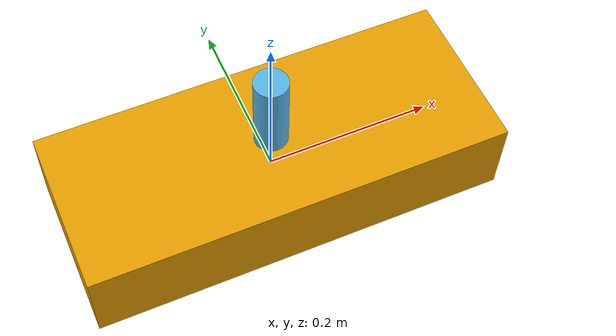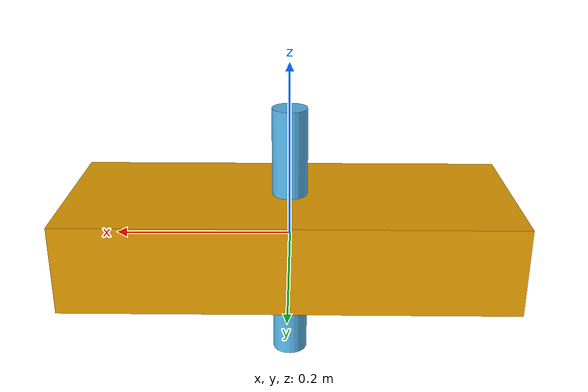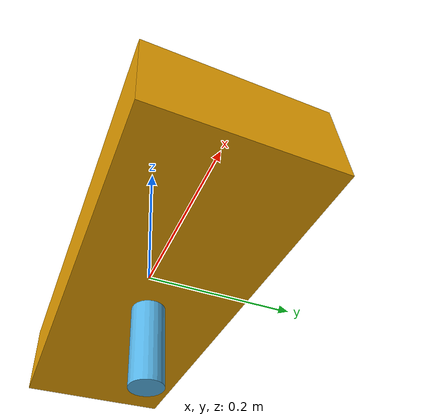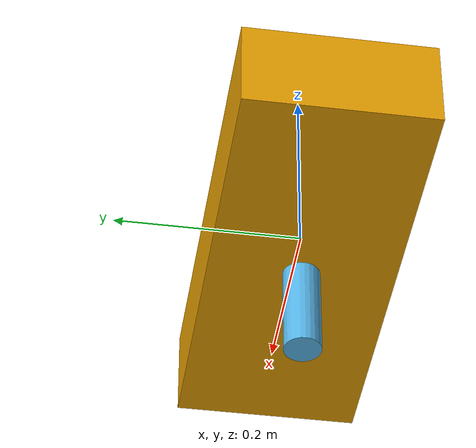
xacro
<?xml version="1.0"?>
<robot xmlns:xacro="http://www.ros.org/wiki/xacro" name="anymal">
  <xacro:property name="mass" value="1.0"/>

  <link name="base_link">
    <inertial>
      <mass value="${mass}"/>
      <origin xyz="0 0 0"/>
      <inertia ixx="0.1" ixy="0" ixz="0" iyy="0.1" iyz="0" izz="0.1"/>
    </inertial>
    <visual>
      <geometry>
        <box size="0.5 0.2 0.1"/>
      </geometry>
    </visual>
    <collision>
      <geometry>
        <box size="0.5 0.2 0.1"/>
      </geometry>
    </collision>
  </link>

  <joint name="fixed_joint" type="fixed">
    <parent link="base_link"/>
    <child link="dummy_leg"/>
  </joint>

  <link name="dummy_leg">
    <visual>
      <geometry>
        <cylinder radius="0.02" length="0.3"/>
      </geometry>
    </visual>
  </link>

  <ros2_control name="AnymalSystem" type="system">
    <hardware>
      <plugin>/GenericSystem</plugin>
    </hardware>
    <joint name="dummy_joint" command_interfaces="position" state_interfaces="position velocity effort"/>
  </ros2_control>
</robot>
